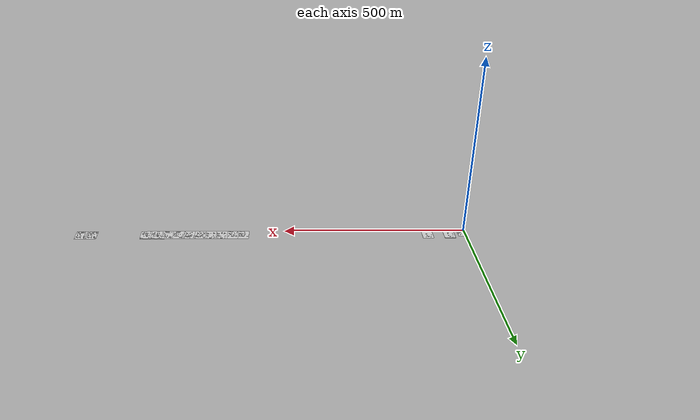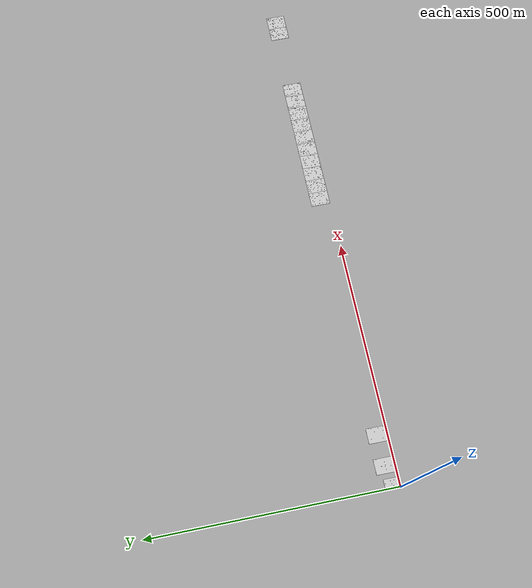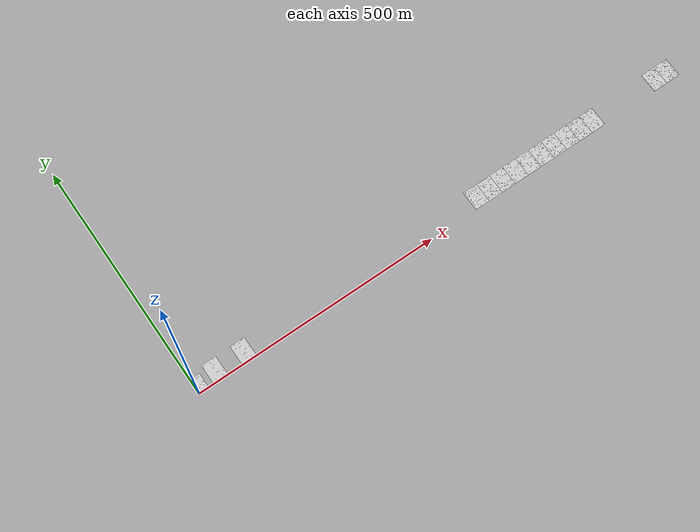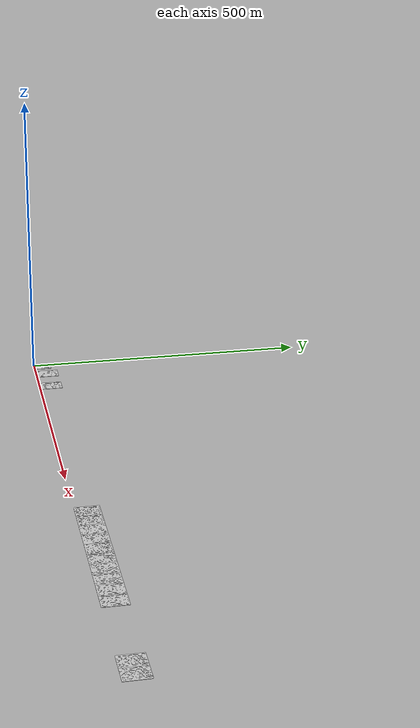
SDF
<sdf version="1.6">
 <world name="empty">
  <physics name="1ms" type="ignored">
   <max_step_size>0.001</max_step_size>
   <real_time_factor>10.0</real_time_factor>
  </physics>
  <plugin filename="gz-sim-physics-system" name="gz::sim::systems::Physics"/>
  <plugin filename="gz-sim-sensors-system" name="gz::sim::systems::Sensors">
   <render_engine>ogre2</render_engine>
  </plugin>
  <plugin filename="gz-sim-imu-system" name="gz::sim::systems::Imu"/>
  <plugin filename="gz-sim-user-commands-system" name="gz::sim::systems::UserCommands"/>
  <plugin filename="gz-sim-scene-broadcaster-system" name="gz::sim::systems::SceneBroadcaster"/>
  <light type="directional" name="sun">
   <pose>0 0 10 0 0 0</pose>
   <diffuse>1 1 1 1</diffuse>
   <specular>0.5 0.5 0.5 1</specular>
   <attenuation>
    <range>1000</range>
    <constant>0.9</constant>
    <linear>0.01</linear>
    <quadratic>0.001</quadratic>
   </attenuation>
   <direction>-0.5 0.1 -0.9</direction>
  </light>
  <model name="track_01_200">
   <static>true</static>
   <link name="track">
    <visual name="track_vis">
     <geometry>
      <mesh><uri>model://src/environments/meshes/track_01_200.stl</uri><scale>0.001 0.001 0.001</scale></mesh>
     </geometry>
     <material>
      <ambient>0.8 0.8 0.8 1</ambient>
      <diffuse>0.8 0.8 0.8 1</diffuse>
      <specular>0.8 0.8 0.8 1</specular>
     </material>
    </visual>
    <collision name="track_col">
     <geometry>
      <mesh><uri>model://src/environments/meshes/track_01_200.stl</uri><scale>0.001 0.001 0.001</scale></mesh>
     </geometry>
    </collision>
   </link>
  </model>
  <model name="track_01_250">
   <pose>30 0 0 0 0 0</pose>
   <static>true</static>
   <link name="track">
    <visual name="track_vis">
     <geometry>
      <mesh><uri>model://src/environments/meshes/track_01_250.stl</uri><scale>0.001 0.001 0.001</scale></mesh>
     </geometry>
     <material>
      <ambient>0.8 0.8 0.8 1</ambient>
      <diffuse>0.8 0.8 0.8 1</diffuse>
      <specular>0.8 0.8 0.8 1</specular>
     </material>
    </visual>
    <collision name="track_col">
     <geometry>
      <mesh><uri>model://src/environments/meshes/track_01_250.stl</uri><scale>0.001 0.001 0.001</scale></mesh>
     </geometry>
    </collision>
   </link>
  </model>
  <model name="track_01_350">
   <pose>90 0 0 0 0 0</pose>
   <static>true</static>
   <link name="track">
    <visual name="track_vis">
     <geometry>
      <mesh><uri>model://src/environments/meshes/track_01_350.stl</uri><scale>0.001 0.001 0.001</scale></mesh>
     </geometry>
     <material>
      <ambient>0.8 0.8 0.8 1</ambient>
      <diffuse>0.8 0.8 0.8 1</diffuse>
      <specular>0.8 0.8 0.8 1</specular>
     </material>
    </visual>
    <collision name="track_col">
     <geometry>
      <mesh><uri>model://src/environments/meshes/track_01_350.stl</uri><scale>0.001 0.001 0.001</scale></mesh>
     </geometry>
    </collision>
   </link>
  </model>
  <model name="narrow_track_01_100">
   <pose>600 0 0 0 0 0</pose>
   <static>true</static>
   <link name="track">
    <visual name="track_vis">
     <geometry>
      <mesh>
       <uri>model://src/environments/meshes/narrow_track_01_100.stl</uri>
       <scale>0.001 0.001 0.001</scale>
      </mesh>
     </geometry>
     <material>
      <ambient>0.8 0.8 0.8 1</ambient>
      <diffuse>0.8 0.8 0.8 1</diffuse>
      <specular>0.8 0.8 0.8 1</specular>
     </material>
    </visual>
    <collision name="track_col">
     <geometry>
      <mesh>
       <uri>model://src/environments/meshes/narrow_track_01_100.stl</uri>
       <scale>0.001 0.001 0.001</scale>
      </mesh>
     </geometry>
    </collision>
   </link>
  </model>
  <model name="narrow_track_01_150">
   <pose>630 0 0 0 0 0</pose>
   <static>true</static>
   <link name="track">
    <visual name="track_vis">
     <geometry>
      <mesh>
       <uri>model://src/environments/meshes/narrow_track_01_150.stl</uri>
       <scale>0.001 0.001 0.001</scale>
      </mesh>
     </geometry>
     <material>
      <ambient>0.8 0.8 0.8 1</ambient>
      <diffuse>0.8 0.8 0.8 1</diffuse>
      <specular>0.8 0.8 0.8 1</specular>
     </material>
    </visual>
    <collision name="track_col">
     <geometry>
      <mesh>
       <uri>model://src/environments/meshes/narrow_track_01_150.stl</uri>
       <scale>0.001 0.001 0.001</scale>
      </mesh>
     </geometry>
    </collision>
   </link>
  </model>
  <model name="narrow_track_02_100">
   <pose>660 0 0 0 0 0</pose>
   <static>true</static>
   <link name="track">
    <visual name="track_vis">
     <geometry>
      <mesh>
       <uri>model://src/environments/meshes/narrow_track_02_100.stl</uri>
       <scale>0.001 0.001 0.001</scale>
      </mesh>
     </geometry>
     <material>
      <ambient>0.8 0.8 0.8 1</ambient>
      <diffuse>0.8 0.8 0.8 1</diffuse>
      <specular>0.8 0.8 0.8 1</specular>
     </material>
    </visual>
    <collision name="track_col">
     <geometry>
      <mesh>
       <uri>model://src/environments/meshes/narrow_track_02_100.stl</uri>
       <scale>0.001 0.001 0.001</scale>
      </mesh>
     </geometry>
    </collision>
   </link>
  </model>
  <model name="narrow_track_02_150">
   <pose>690 0 0 0 0 0</pose>
   <static>true</static>
   <link name="track">
    <visual name="track_vis">
     <geometry>
      <mesh>
       <uri>model://src/environments/meshes/narrow_track_02_150.stl</uri>
       <scale>0.001 0.001 0.001</scale>
      </mesh>
     </geometry>
     <material>
      <ambient>0.8 0.8 0.8 1</ambient>
      <diffuse>0.8 0.8 0.8 1</diffuse>
      <specular>0.8 0.8 0.8 1</specular>
     </material>
    </visual>
    <collision name="track_col">
     <geometry>
      <mesh>
       <uri>model://src/environments/meshes/narrow_track_02_150.stl</uri>
       <scale>0.001 0.001 0.001</scale>
      </mesh>
     </geometry>
    </collision>
   </link>
  </model>
  <model name="narrow_track_03_100">
   <pose>720 0 0 0 0 0</pose>
   <static>true</static>
   <link name="track">
    <visual name="track_vis">
     <geometry>
      <mesh>
       <uri>model://src/environments/meshes/narrow_track_03_100.stl</uri>
       <scale>0.001 0.001 0.001</scale>
      </mesh>
     </geometry>
     <material>
      <ambient>0.8 0.8 0.8 1</ambient>
      <diffuse>0.8 0.8 0.8 1</diffuse>
      <specular>0.8 0.8 0.8 1</specular>
     </material>
    </visual>
    <collision name="track_col">
     <geometry>
      <mesh>
       <uri>model://src/environments/meshes/narrow_track_03_100.stl</uri>
       <scale>0.001 0.001 0.001</scale>
      </mesh>
     </geometry>
    </collision>
   </link>
  </model>
  <model name="narrow_track_03_150">
   <pose>750 0 0 0 0 0</pose>
   <static>true</static>
   <link name="track">
    <visual name="track_vis">
     <geometry>
      <mesh>
       <uri>model://src/environments/meshes/narrow_track_03_150.stl</uri>
       <scale>0.001 0.001 0.001</scale>
      </mesh>
     </geometry>
     <material>
      <ambient>0.8 0.8 0.8 1</ambient>
      <diffuse>0.8 0.8 0.8 1</diffuse>
      <specular>0.8 0.8 0.8 1</specular>
     </material>
    </visual>
    <collision name="track_col">
     <geometry>
      <mesh>
       <uri>model://src/environments/meshes/narrow_track_03_150.stl</uri>
       <scale>0.001 0.001 0.001</scale>
      </mesh>
     </geometry>
    </collision>
   </link>
  </model>
  <model name="narrow_track_04_100">
   <pose>780 0 0 0 0 0</pose>
   <static>true</static>
   <link name="track">
    <visual name="track_vis">
     <geometry>
      <mesh>
       <uri>model://src/environments/meshes/narrow_track_04_100.stl</uri>
       <scale>0.001 0.001 0.001</scale>
      </mesh>
     </geometry>
     <material>
      <ambient>0.8 0.8 0.8 1</ambient>
      <diffuse>0.8 0.8 0.8 1</diffuse>
      <specular>0.8 0.8 0.8 1</specular>
     </material>
    </visual>
    <collision name="track_col">
     <geometry>
      <mesh>
       <uri>model://src/environments/meshes/narrow_track_04_100.stl</uri>
       <scale>0.001 0.001 0.001</scale>
      </mesh>
     </geometry>
    </collision>
   </link>
  </model>
  <model name="narrow_track_04_150">
   <pose>810 0 0 0 0 0</pose>
   <static>true</static>
   <link name="track">
    <visual name="track_vis">
     <geometry>
      <mesh>
       <uri>model://src/environments/meshes/narrow_track_04_150.stl</uri>
       <scale>0.001 0.001 0.001</scale>
      </mesh>
     </geometry>
     <material>
      <ambient>0.8 0.8 0.8 1</ambient>
      <diffuse>0.8 0.8 0.8 1</diffuse>
      <specular>0.8 0.8 0.8 1</specular>
     </material>
    </visual>
    <collision name="track_col">
     <geometry>
      <mesh>
       <uri>model://src/environments/meshes/narrow_track_04_150.stl</uri>
       <scale>0.001 0.001 0.001</scale>
      </mesh>
     </geometry>
    </collision>
   </link>
  </model>
  <model name="narrow_track_05_100">
   <pose>840 0 0 0 0 0</pose>
   <static>true</static>
   <link name="track">
    <visual name="track_vis">
     <geometry>
      <mesh>
       <uri>model://src/environments/meshes/narrow_track_05_100.stl</uri>
       <scale>0.001 0.001 0.001</scale>
      </mesh>
     </geometry>
     <material>
      <ambient>0.8 0.8 0.8 1</ambient>
      <diffuse>0.8 0.8 0.8 1</diffuse>
      <specular>0.8 0.8 0.8 1</specular>
     </material>
    </visual>
    <collision name="track_col">
     <geometry>
      <mesh>
       <uri>model://src/environments/meshes/narrow_track_05_100.stl</uri>
       <scale>0.001 0.001 0.001</scale>
      </mesh>
     </geometry>
    </collision>
   </link>
  </model>
  <model name="narrow_track_05_150">
   <pose>870 0 0 0 0 0</pose>
   <static>true</static>
   <link name="track">
    <visual name="track_vis">
     <geometry>
      <mesh>
       <uri>model://src/environments/meshes/narrow_track_05_150.stl</uri>
       <scale>0.001 0.001 0.001</scale>
      </mesh>
     </geometry>
     <material>
      <ambient>0.8 0.8 0.8 1</ambient>
      <diffuse>0.8 0.8 0.8 1</diffuse>
      <specular>0.8 0.8 0.8 1</specular>
     </material>
    </visual>
    <collision name="track_col">
     <geometry>
      <mesh>
       <uri>model://src/environments/meshes/narrow_track_05_150.stl</uri>
       <scale>0.001 0.001 0.001</scale>
      </mesh>
     </geometry>
    </collision>
   </link>
  </model>
  <model name="narrow_track_06_100">
   <pose>1020 0 0 0 0 0</pose>
   <static>true</static>
   <link name="track">
    <visual name="track_vis">
     <geometry>
      <mesh>
       <uri>model://src/environments/meshes/narrow_track_06_100.stl</uri>
       <scale>0.001 0.001 0.001</scale>
      </mesh>
     </geometry>
     <material>
      <ambient>0.8 0.8 0.8 1</ambient>
      <diffuse>0.8 0.8 0.8 1</diffuse>
      <specular>0.8 0.8 0.8 1</specular>
     </material>
    </visual>
    <collision name="track_col">
     <geometry>
      <mesh>
       <uri>model://src/environments/meshes/narrow_track_06_100.stl</uri>
       <scale>0.001 0.001 0.001</scale>
      </mesh>
     </geometry>
    </collision>
   </link>
  </model>
  <model name="narrow_track_06_150">
   <pose>1050 0 0 0 0 0</pose>
   <static>true</static>
   <link name="track">
    <visual name="track_vis">
     <geometry>
      <mesh>
       <uri>model://src/environments/meshes/narrow_track_06_150.stl</uri>
       <scale>0.001 0.001 0.001</scale>
      </mesh>
     </geometry>
     <material>
      <ambient>0.8 0.8 0.8 1</ambient>
      <diffuse>0.8 0.8 0.8 1</diffuse>
      <specular>0.8 0.8 0.8 1</specular>
     </material>
    </visual>
    <collision name="track_col">
     <geometry>
      <mesh>
       <uri>model://src/environments/meshes/narrow_track_06_150.stl</uri>
       <scale>0.001 0.001 0.001</scale>
      </mesh>
     </geometry>
    </collision>
   </link>
  </model>
 </world>
</sdf>
